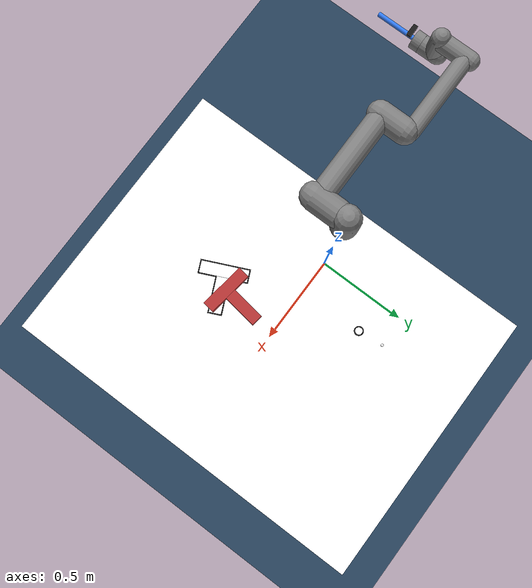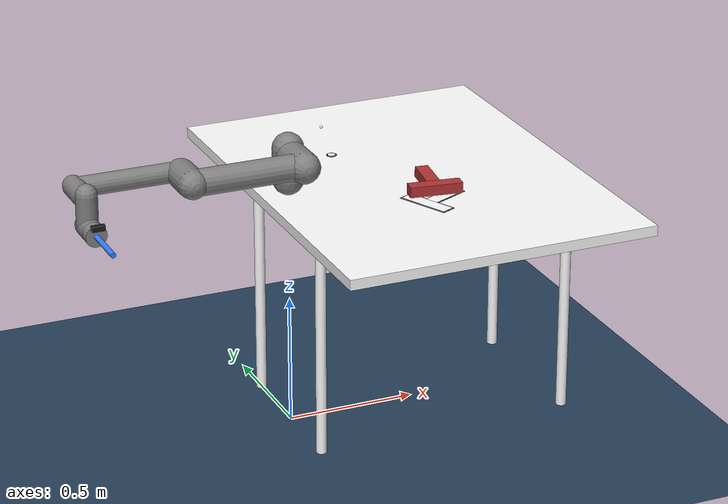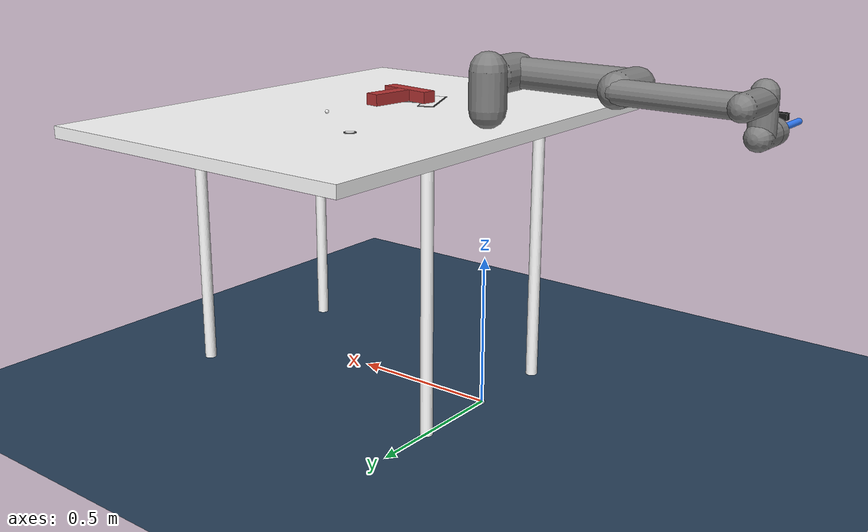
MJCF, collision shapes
<mujoco model="pusht">
  <include file="ur5e.xml"/>
  <include file="table_with_pusht.xml"/>

  <option timestep="0.0005" integrator="implicitfast" iterations="50" tolerance="1e-5"/>

  <statistic center="0.3 0 0.4" extent="0.8"/>

  <visual>
           <!-- 环境光的颜色和强度，1最强     漫反射颜色和强度       高光反射属性-->
    <headlight ambient="0.4 0.4 0.4" diffuse="0.4 0.4 0.4" specular="0 0 0" active="1"/>

    <global azimuth="180" elevation="-20" offwidth="1920" offheight="1080"/>

    <quality shadowsize="4096"/>
  </visual>

  <asset>
    <!-- 天空盒 -->
    <texture type="skybox" builtin="gradient" rgb1="0.3 0.5 0.7" rgb2="0 0 0" width="512" height="3072"/>
    <!-- 地面 -->
    <texture type="2d" name="groundplane" builtin="checker" mark="edge" rgb1="0.2 0.3 0.4" rgb2="0.1 0.2 0.3"
      markrgb="0.8 0.8 0.8" width="300" height="300"/>
    <material name="groundplane" texture="groundplane" texuniform="true" texrepeat="5 5" reflectance="0.2"/>
  </asset>

  <worldbody>
    <light name="light_left" directional="true"
               pos="0.5 0.8 2.5" dir="0.1 -0.5 -1"
               diffuse="0.3 0.3 0.3" specular="0 0 0"
               castshadow="true"/>

    <light name="light_right" directional="true"
               pos="0.5 -0.8 2.5" dir="0.1 0.5 -1"
               diffuse="0.3 0.3 0.3" specular="0 0 0"
               castshadow="true"/>

    <light name="up_right" directional="true"
               pos="1.0 0 2.5" dir="-0.5 0 -1"
               diffuse="0.3 0.3 0.3" specular="0 0 0"
               castshadow="true"/>
    <geom name="floor" size="0 0 0.05" type="plane" material="groundplane"/>
    <camera name="Front_Camera" pos="1.1 0 1.6" euler="0 0.75 1.5708" mode="fixed" fovy="50" />
    <camera name="Top_down_Camera" pos="0.5 0 2.4" euler="0 0.0 1.5708" mode="fixed" fovy="45" />
    <body name="viz_world_frame" pos="0 0 0">
        <geom type="sphere" size="0.01" rgba="1 1 1 0.5" contype="0" conaffinity="0"/>

        <geom type="cylinder" fromto="0 0 0 0.2 0 0" size="0.003" rgba="1 0 0 0.5" contype="0" conaffinity="0"/>
        <geom type="cylinder" fromto="0 0 0 0 0.2 0" size="0.003" rgba="0 1 0 0.5" contype="0" conaffinity="0"/>
        <geom type="cylinder" fromto="0 0 0 0 0 0.2" size="0.003" rgba="0 0 1 0.5" contype="0" conaffinity="0"/>

        <site name="World" pos="0.22 0 0" size="0.01" rgba="0 0 0 0" type="sphere"/>
    </body>
    <!-- 动捕 ： #mocap="true"精准模式，无动力学-->
    <body name="mocap_target" pos="0.3 0.4 1.0" euler="0 0 0" mocap="true">
        <geom type="sphere" size="0.006" rgba="1 1 1 1" contype="0" conaffinity="0"/>

        <geom type="cylinder" fromto="0 0 0 0.1 0 0" size="0.005" rgba="1 0 0 0" contype="0" conaffinity="0"/>

        <geom type="cylinder" fromto="0 0 0 0 0.1 0" size="0.005" rgba="0 1 0 0" contype="0" conaffinity="0"/>

        <geom type="cylinder" fromto="0 0 0 0 0 0.1" size="0.005" rgba="0 0 1 0" contype="0" conaffinity="0"/>
    </body>
  </worldbody>

  <equality>
      <weld body1="mocap_target" body2="tool_pusher"
        solref="0.005 1" solimp="0.99 0.999 0.001"  relpose="-0 0 -0.2 1 0 0 0"/>
  </equality>

<!-- 有include顺序决定 -->
  <keyframe>
    <key name="home" qpos="3.1415 -1.5708 2 -2 -1.5708 0
                          0.65 0.15 0.95  0.999 0 0 0.026" ctrl="3.1415 -1.5708 2 -2 -1.5708 0 "/>
  </keyframe>
</mujoco>

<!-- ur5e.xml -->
<mujoco model="ur5e">
  <compiler angle="radian" meshdir="assets" autolimits="true"/>

  <option integrator="implicitfast"/>

  <default>
    <default class="ur5e">
      <material specular="0.5" shininess="0.25"/>
      <joint axis="0 1 0" range="-6.28319 6.28319" armature="0.1"/>
      <general gaintype="fixed" biastype="affine" ctrlrange="-6.2831 6.2831" gainprm="2000" biasprm="0 -2000 -400"
        forcerange="-150 150"/>
      <default class="size3">
        <default class="size3_limited">
          <joint range="-3.1415 3.1415"/>
          <general ctrlrange="-3.1415 3.1415"/>
        </default>
      </default>
      <default class="size1">
        <general gainprm="500" biasprm="0 -500 -100" forcerange="-28 28"/>
      </default>
      <default class="visual">
        <geom type="mesh" contype="0" conaffinity="0" group="2"/>
      </default>
      <default class="collision">
        <geom type="capsule" group="3"/>
        <default class="eef_collision">
          <geom type="cylinder"/>
        </default>
      </default>
      <site size="0.001" rgba="0.5 0.5 0.5 0.3" group="4"/>
    </default>
  </default>

  <asset>
    <material class="ur5e" name="black" rgba="0.033 0.033 0.033 1"/>
    <material class="ur5e" name="jointgray" rgba="0.278 0.278 0.278 1"/>
    <material class="ur5e" name="linkgray" rgba="0.82 0.82 0.82 1"/>
    <material class="ur5e" name="urblue" rgba="0.49 0.678 0.8 1"/>

    <mesh file="base_0.obj"/>
    <mesh file="base_1.obj"/>
    <mesh file="shoulder_0.obj"/>
    <mesh file="shoulder_1.obj"/>
    <mesh file="shoulder_2.obj"/>
    <mesh file="upperarm_0.obj"/>
    <mesh file="upperarm_1.obj"/>
    <mesh file="upperarm_2.obj"/>
    <mesh file="upperarm_3.obj"/>
    <mesh file="forearm_0.obj"/>
    <mesh file="forearm_1.obj"/>
    <mesh file="forearm_2.obj"/>
    <mesh file="forearm_3.obj"/>
    <mesh file="wrist1_0.obj"/>
    <mesh file="wrist1_1.obj"/>
    <mesh file="wrist1_2.obj"/>
    <mesh file="wrist2_0.obj"/>
    <mesh file="wrist2_1.obj"/>
    <mesh file="wrist2_2.obj"/>
    <mesh file="wrist3.obj"/>
  </asset>

  <worldbody>
    <body name="base" pos="0 0 0.92" quat="0 0 0 -1" childclass="ur5e">
      <inertial mass="4.0" pos="0 0 0" diaginertia="0.00443333156 0.00443333156 0.0072"/>
      <geom mesh="base_0" material="black" class="visual"/>
      <geom mesh="base_1" material="jointgray" class="visual"/>
      <body name="shoulder_link" pos="0 0 0.163">
        <inertial mass="3.7" pos="0 0 0" diaginertia="0.0102675 0.0102675 0.00666"/>
        <joint name="shoulder_pan_joint" class="size3" axis="0 0 1"/>
        <geom mesh="shoulder_0" material="urblue" class="visual"/>
        <geom mesh="shoulder_1" material="black" class="visual"/>
        <geom mesh="shoulder_2" material="jointgray" class="visual"/>
        <geom class="collision" size="0.06 0.06" pos="0 0 -0.04"/>
        <body name="upper_arm_link" pos="0 0.138 0" quat="1 0 1 0">
          <inertial mass="8.393" pos="0 0 0.2125" diaginertia="0.133886 0.133886 0.0151074"/>
          <joint name="shoulder_lift_joint" class="size3"/>
          <geom mesh="upperarm_0" material="linkgray" class="visual"/>
          <geom mesh="upperarm_1" material="black" class="visual"/>
          <geom mesh="upperarm_2" material="jointgray" class="visual"/>
          <geom mesh="upperarm_3" material="urblue" class="visual"/>
          <geom class="collision" pos="0 -0.04 0" quat="1 1 0 0" size="0.06 0.06"/>
          <geom class="collision" size="0.05 0.2" pos="0 0 0.2"/>
          <body name="forearm_link" pos="0 -0.131 0.425">
            <inertial mass="2.275" pos="0 0 0.196" diaginertia="0.0311796 0.0311796 0.004095"/>
            <joint name="elbow_joint" class="size3_limited"/>
            <geom mesh="forearm_0" material="urblue" class="visual"/>
            <geom mesh="forearm_1" material="linkgray" class="visual"/>
            <geom mesh="forearm_2" material="black" class="visual"/>
            <geom mesh="forearm_3" material="jointgray" class="visual"/>
            <geom class="collision" pos="0 0.08 0" quat="1 1 0 0" size="0.055 0.06"/>
            <geom class="collision" size="0.038 0.19" pos="0 0 0.2"/>
            <body name="wrist_1_link" pos="0 0 0.392" quat="1 0 1 0">
              <inertial mass="1.219" pos="0 0.127 0" diaginertia="0.0025599 0.0025599 0.0021942"/>
              <joint name="wrist_1_joint" class="size1"/>
              <geom mesh="wrist1_0" material="black" class="visual"/>
              <geom mesh="wrist1_1" material="urblue" class="visual"/>
              <geom mesh="wrist1_2" material="jointgray" class="visual"/>
              <geom class="collision" pos="0 0.05 0" quat="1 1 0 0" size="0.04 0.07"/>
              <body name="wrist_2_link" pos="0 0.127 0">
                <inertial mass="1.219" pos="0 0 0.1" diaginertia="0.0025599 0.0025599 0.0021942"/>
                <joint name="wrist_2_joint" axis="0 0 1" class="size1"/>
                <geom mesh="wrist2_0" material="black" class="visual"/>
                <geom mesh="wrist2_1" material="urblue" class="visual"/>
                <geom mesh="wrist2_2" material="jointgray" class="visual"/>
                <geom class="collision" size="0.04 0.06" pos="0 0 0.04"/>
                <geom class="collision" pos="0 0.02 0.1" quat="1 1 0 0" size="0.04 0.04"/>
                <body name="wrist_3_link" pos="0 0 0.1">
                  <inertial mass="0.1889" pos="0 0.0771683 0" quat="1 0 0 1"
                    diaginertia="0.000132134 9.90863e-05 9.90863e-05"/>
                  <joint name="wrist_3_joint" class="size1"/>
                  <geom material="linkgray" mesh="wrist3" class="visual"/>
                  <geom class="eef_collision" pos="0 0.08 0" quat="1 1 0 0" size="0.04 0.02"/>
                  <site name="attachment_site" pos="0 0.1 0" quat="-1 1 0 0"/>
                  <body name="tool_pusher" pos="0 0.05 0" quat="-1 1 0 0">
                    <geom name="stick_geom" type="cylinder" size="0.01 0.15" pos="0 0 0.08"
                          rgba="0.2 0.5 1 1"
                          friction="0.003 0.005 0.0001"
                          contype="1" conaffinity="1" density="1000"
                          solref="0.02 1" solimp="0.9 0.95 0.001"/>
                    <site name="pusher_tip" pos="0 0 0.16" rgba="1 0 0 1" size="0.005" group="1"/>
                    <geom name="camera_visual" type="box" size="0.025 0.01 0.01" pos="-0.0 0.04 0.07"
                    rgba="0.1 0.1 0.1 1" contype="0" conaffinity="0"/>
                    <camera name="Wrist_Camera" pos="-0.0 0.04 0.07" fovy="45" mode="fixed" euler="0.1 3.1415 0"/>
                  </body>
                </body>
              </body>
            </body>
          </body>
        </body>
      </body>
    </body>
  </worldbody>

  <actuator>
    <general class="size3" name="shoulder_pan" joint="shoulder_pan_joint"/>
    <general class="size3" name="shoulder_lift" joint="shoulder_lift_joint"/>
    <general class="size3_limited" name="elbow" joint="elbow_joint"/>
    <general class="size1" name="wrist_1" joint="wrist_1_joint"/>
    <general class="size1" name="wrist_2" joint="wrist_2_joint"/>
    <general class="size1" name="wrist_3" joint="wrist_3_joint"/>
  </actuator>

</mujoco>

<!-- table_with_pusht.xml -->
<mujoco model="table_with_pusht">
  <asset>
    <material name="white_mat" rgba="1 1 1 1" specular="0.5" shininess="0.1"/>
  </asset>

<default>
    <default class="pusht_collision">
        <geom type="box" density="500" rgba="0.7 0.2 0.2 1"
              friction="1 0.005 0.0001"
              solref="0.01 1"
              solimp="0.9 0.95 0.001"/>
    </default>
    <!-- 目标T形线条粗细 -->
    <default class="outline_line">
        <geom type="capsule" size="0.005" rgba="0 0 0 1" contype="0" conaffinity="0"/>
    </default>
  </default>

  <worldbody>
    <body name="table" pos="0.5 0 0">
      <geom name="table_top" type="box" size="0.6 0.8 0.02" pos="0 0 0.9"  material="white_mat" friction="1 0.005 0.0001" solref="0.02 1" solimp="0.95 0.99 0.001"/>
      <geom name="leg1" type="cylinder" size="0.02 0.44" pos="0.5 0.3 0.44" material="white_mat"/>
      <geom name="leg2" type="cylinder" size="0.02 0.44" pos="-0.5 0.3 0.44" material="white_mat"/>
      <geom name="leg3" type="cylinder" size="0.02 0.44" pos="0.5 -0.3 0.44" material="white_mat"/>
      <geom name="leg4" type="cylinder" size="0.02 0.44" pos="-0.5 -0.3 0.44" material="white_mat"/>
    </body>

    <body name="pusht_block" pos="0.5 -0.15 0.95" euler="0 0 3">
      <freejoint/>
      <!-- T形的横和竖，这里是分开的 -->
      <geom class="pusht_collision" name="t_bar_top" size="0.1 0.025 0.02" pos="0 0.075 0"/>
      <geom class="pusht_collision" name="t_bar_stem" size="0.025 0.075 0.02" pos="0 -0.025 0"/>
    </body>

    <body name="goal_target" euler="0 0 2" pos="0.50 -0.25 0.921">
       <geom type="box" size="0.1 0.025 0.001" pos="0 0.075 0.001"
             material="white_mat" contype="0" conaffinity="0"/>
      <geom type="box" size="0.105 0.030 0.001" pos="0 0.075 0"
             rgba="0 0 0 1" contype="0" conaffinity="0"/>
       <geom type="box" size="0.025 0.075 0.001" pos="0 -0.025 0.001"
             material="white_mat" contype="0" conaffinity="0"/>
       <geom type="box" size="0.030 0.080 0.001" pos="0 -0.025 0"
             rgba="0 0 0 1" contype="0" conaffinity="0"/>
    </body>
    <body name="bullseye_target" pos="0.3 0.3 0.921">
        <geom type="cylinder" size="0.02 0.001" rgba="0 0 0 1" contype="0" conaffinity="0"/>

        <geom type="cylinder" size="0.015 0.001" pos="0 0 0.001" material="white_mat" contype="0" conaffinity="0"/>
    </body>
  </worldbody>
</mujoco>
